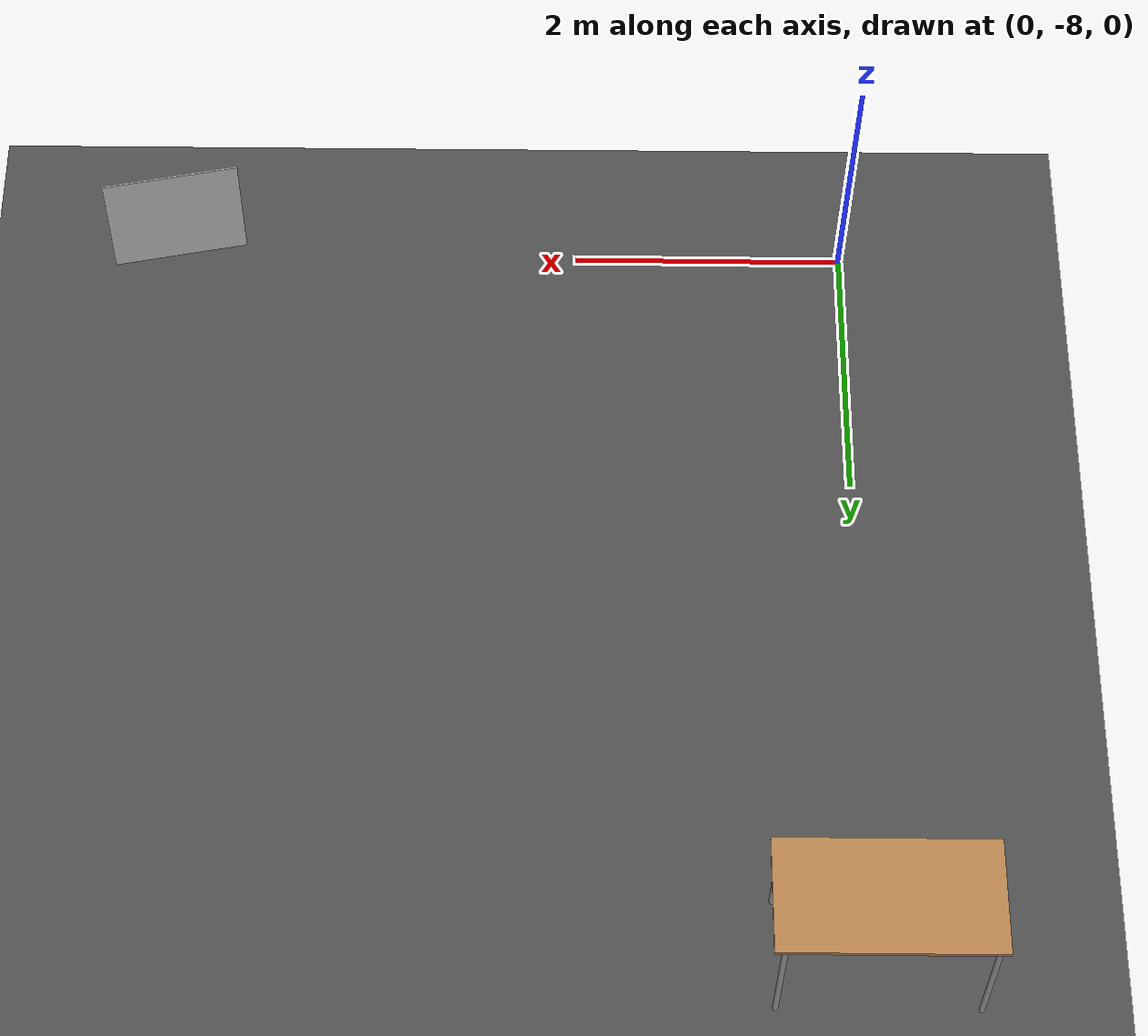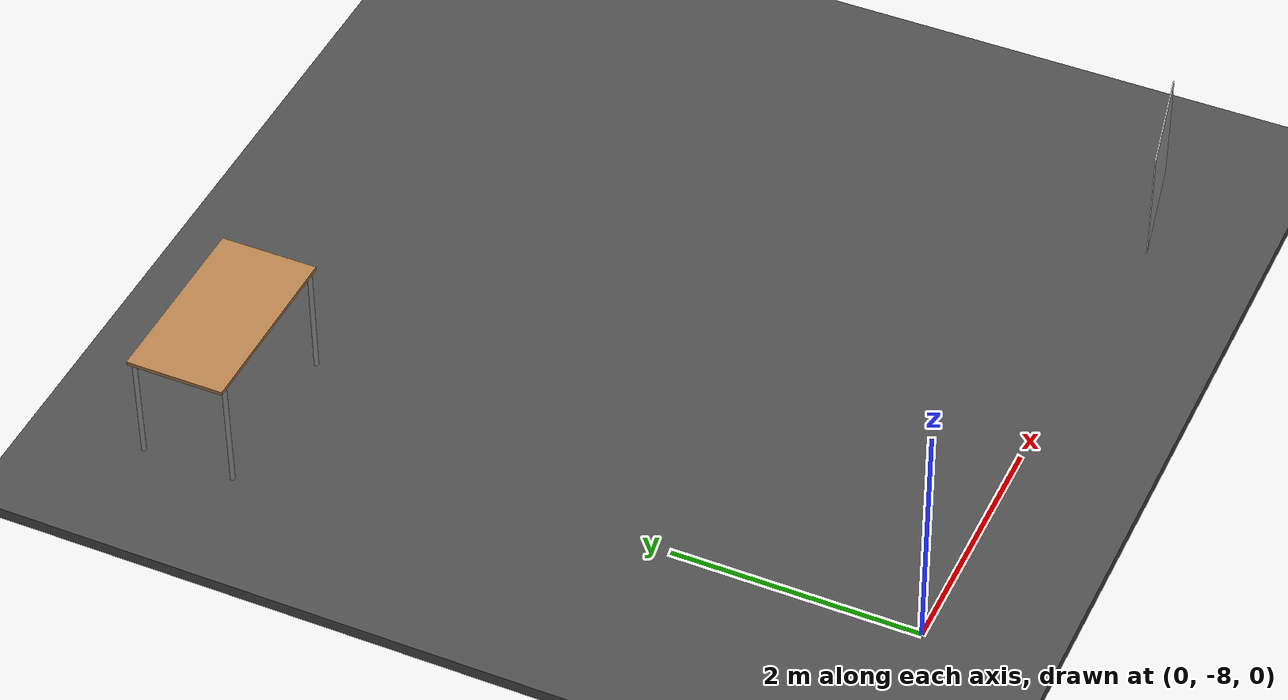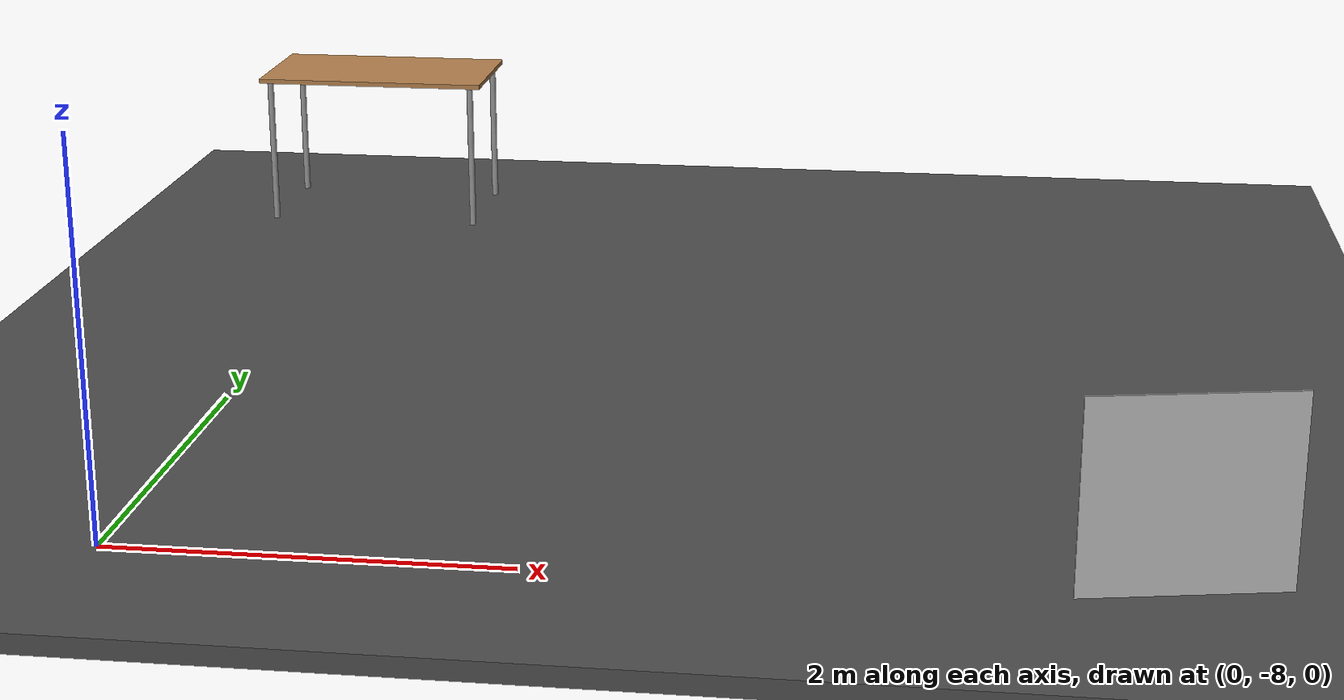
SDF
<sdf version="1.7">
 <world name="default">
  <light name="sun" type="directional">
   <pose>0 0 10 0 -0 0</pose>
   <diffuse>0.8 0.8 0.8 1</diffuse>
   <specular>0.2 0.2 0.2 1</specular>
   <attenuation>
    <range>1000</range>
    <constant>0.9</constant>
    <linear>0.01</linear>
    <quadratic>0.001</quadratic>
   </attenuation>
   <direction>-0.5 0.1 -0.9</direction>
   <spot><inner_angle>0</inner_angle><outer_angle>0</outer_angle><falloff>0</falloff></spot>
  </light>
  <model name="ground_plane">
   <static>1</static>
   <link name="link">
    <collision name="collision">
     <geometry><plane><normal>0 0 1</normal><size>100 100</size></plane></geometry>
     <surface>
      <contact><collide_bitmask>65535</collide_bitmask></contact>
      <friction><ode><mu>100</mu><mu2>50</mu2></ode></friction>
     </surface>
    </collision>
    <visual name="visual">
     <cast_shadows>0</cast_shadows>
     <geometry><plane><normal>0 0 1</normal><size>100 100</size></plane></geometry>
     <material>
      <script><uri>file://media/materials/scripts/gazebo.material</uri><name>Gazebo/Grey</name></script>
     </material>
    </visual>
   </link>
  </model>
  <gravity>0 0 -9.8</gravity>
  <magnetic_field>6e-06 2.3e-05 -4.2e-05</magnetic_field>
  <atmosphere type="adiabatic"/>
  <physics name="default_physics" default="0" type="ode">
   <max_step_size>0.001</max_step_size>
   <real_time_factor>1</real_time_factor>
   <real_time_update_rate>1000</real_time_update_rate>
  </physics>
  <scene><ambient>0.4 0.4 0.4 1</ambient><background>0.7 0.7 0.7 1</background><shadows>1</shadows></scene>
  <audio><device>default</device></audio>
  <spherical_coordinates>
   <surface_model>EARTH_WGS84</surface_model>
   <latitude_deg>0</latitude_deg>
   <longitude_deg>0</longitude_deg>
   <elevation>0</elevation>
   <heading_deg>0</heading_deg>
  </spherical_coordinates>
  <model name="table">
   <static>1</static>
   <link name="link">
    <collision name="surface">
     <pose>0 0 1 0 -0 0</pose>
     <geometry><box><size>1.5 0.8 0.03</size></box></geometry>
     <surface><friction><ode><mu>0.6</mu><mu2>0.6</mu2></ode></friction></surface>
    </collision>
    <visual name="visual1">
     <pose>0 0 1 0 -0 0</pose>
     <geometry><box><size>1.5 0.8 0.03</size></box></geometry>
     <material>
      <script><uri>file://media/materials/scripts/gazebo.material</uri><name>Gazebo/Wood</name></script>
     </material>
    </visual>
    <collision name="front_left_leg">
     <pose>0.68 0.38 0.5 0 -0 0</pose>
     <geometry><cylinder><radius>0.02</radius><length>1</length></cylinder></geometry>
    </collision>
    <visual name="front_left_leg">
     <pose>0.68 0.38 0.5 0 -0 0</pose>
     <geometry><cylinder><radius>0.02</radius><length>1</length></cylinder></geometry>
     <material>
      <script><uri>file://media/materials/scripts/gazebo.material</uri><name>Gazebo/Grey</name></script>
     </material>
    </visual>
    <collision name="front_right_leg">
     <pose>0.68 -0.38 0.5 0 -0 0</pose>
     <geometry><cylinder><radius>0.02</radius><length>1</length></cylinder></geometry>
    </collision>
    <visual name="front_right_leg">
     <pose>0.68 -0.38 0.5 0 -0 0</pose>
     <geometry><cylinder><radius>0.02</radius><length>1</length></cylinder></geometry>
     <material>
      <script><uri>file://media/materials/scripts/gazebo.material</uri><name>Gazebo/Grey</name></script>
     </material>
    </visual>
    <collision name="back_right_leg">
     <pose>-0.68 -0.38 0.5 0 -0 0</pose>
     <geometry><cylinder><radius>0.02</radius><length>1</length></cylinder></geometry>
    </collision>
    <visual name="back_right_leg">
     <pose>-0.68 -0.38 0.5 0 -0 0</pose>
     <geometry><cylinder><radius>0.02</radius><length>1</length></cylinder></geometry>
     <material>
      <script><uri>file://media/materials/scripts/gazebo.material</uri><name>Gazebo/Grey</name></script>
     </material>
    </visual>
    <collision name="back_left_leg">
     <pose>-0.68 0.38 0.5 0 -0 0</pose>
     <geometry><cylinder><radius>0.02</radius><length>1</length></cylinder></geometry>
    </collision>
    <visual name="back_left_leg">
     <pose>-0.68 0.38 0.5 0 -0 0</pose>
     <geometry><cylinder><radius>0.02</radius><length>1</length></cylinder></geometry>
     <material>
      <script><uri>file://media/materials/scripts/gazebo.material</uri><name>Gazebo/Grey</name></script>
     </material>
    </visual>
   </link>
   <pose>0 -2.31228 0 0 -0 0</pose>
  </model>
  <model name="asphalt_plane">
   <static>1</static>
   <link name="link">
    <collision name="collision"><geometry><box><size>20 20 0.1</size></box></geometry></collision>
    <visual name="visual">
     <cast_shadows>0</cast_shadows>
     <geometry><box><size>20 20 0.1</size></box></geometry>
     <material>
      <script>
       <uri>model://asphalt_plane/materials/scripts</uri>
       <uri>model://asphalt_plane/materials/textures</uri>
       <name>vrc/asphalt</name>
      </script>
     </material>
    </visual>
   </link>
  </model>
  <light name="sun_clone" type="directional">
   <pose>2.86997 -1.8967 2 0 -0 0</pose>
   <diffuse>0.8 0.8 0.8 1</diffuse>
   <specular>0.2 0.2 0.2 1</specular>
   <direction>-0.483368 0.096674 -0.870063</direction>
   <attenuation>
    <range>1000</range>
    <constant>0.9</constant>
    <linear>0.01</linear>
    <quadratic>0.001</quadratic>
   </attenuation>
   <spot><inner_angle>0</inner_angle><outer_angle>0</outer_angle><falloff>0</falloff></spot>
  </light>
  <model name="Apriltag36_11_00000">
   <link name="main">
    <visual name="main_Visual">
     <geometry><box><size>1 1 0.01</size></box></geometry>
     <material>
      <script>
       <uri>model://Apriltag36_11_00000/materials/scripts</uri>
       <uri>model://Apriltag36_11_00000/materials/textures</uri>
       <name>Apriltag36_11_00000</name>
      </script>
     </material>
    </visual>
   </link>
   <static>1</static>
   <pose>5 -8 0.5 0.198559 -1.57 -1.57001</pose>
  </model>
 </world>
</sdf>
